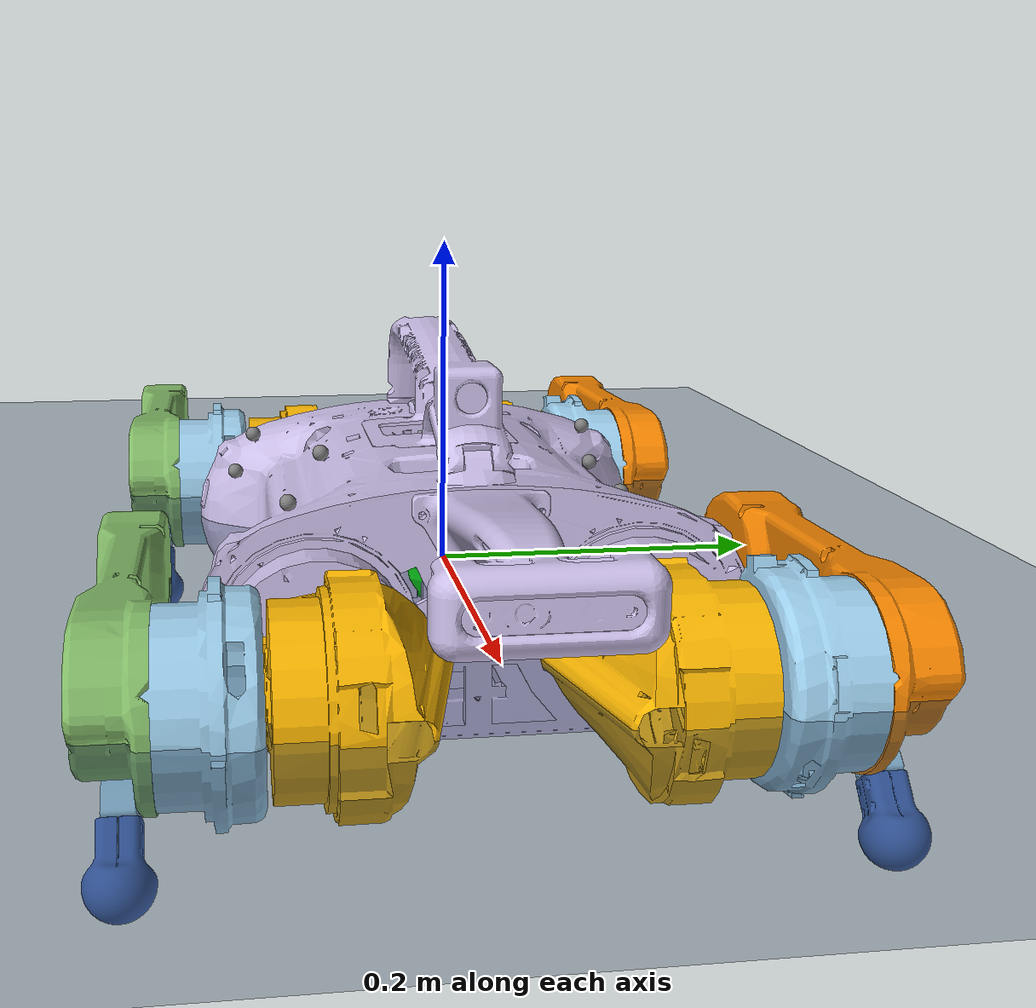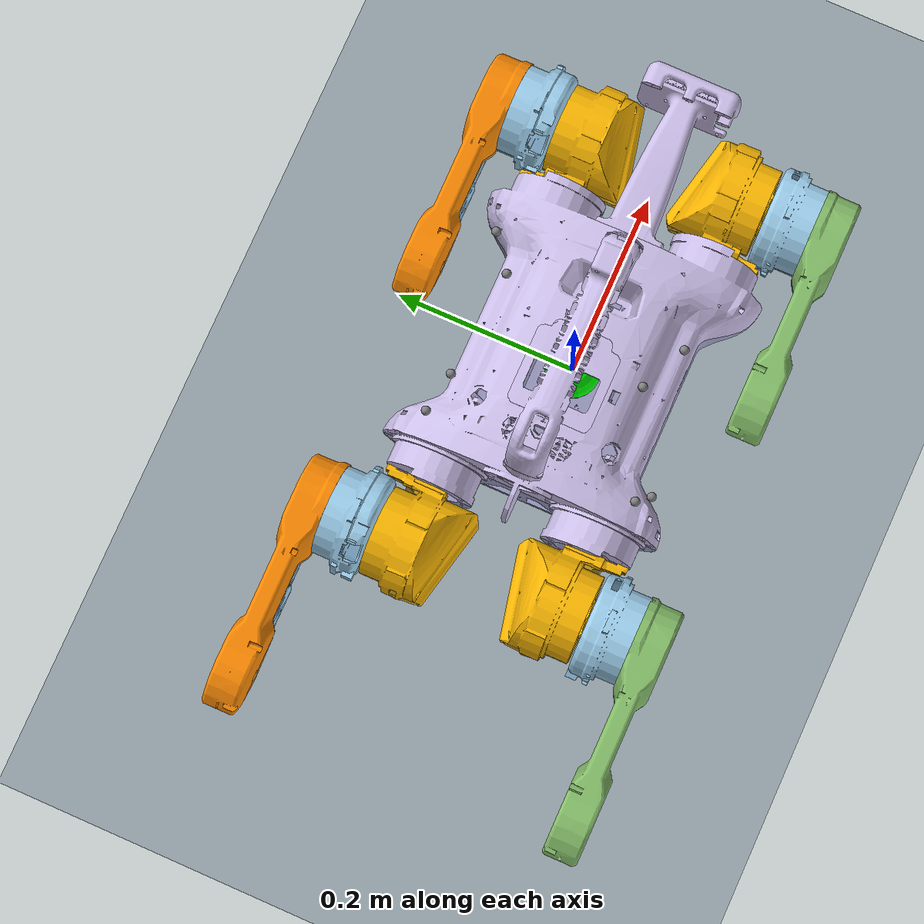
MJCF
<mujoco model="barkour vB scene">
  <include file="barkour_vb_mjx.xml"/>

  <statistic center="0 0 0.1" extent="0.8"/>

  <visual>
    <headlight diffuse="0.6 0.6 0.6" ambient="0.3 0.3 0.3" specular="0 0 0"/>
    <rgba haze="0.15 0.25 0.35 1"/>
    <global azimuth="120" elevation="-20"/>
  </visual>

  <asset>
    <texture type="skybox" builtin="gradient" rgb1="0.3 0.5 0.7" rgb2="0 0 0" width="512" height="3072"/>
    <texture type="2d" name="groundplane" builtin="checker" mark="edge" rgb1="0.2 0.3 0.4" rgb2="0.1 0.2 0.3"
      markrgb="0.8 0.8 0.8" width="300" height="300"/>
    <material name="groundplane" texture="groundplane" texuniform="true" texrepeat="5 5" reflectance="0.2"/>
  </asset>

  <worldbody>
    <light pos="0 0 1.5" dir="0 0 -1" directional="true"/>
    <camera name="default" pos="0.846 -1.465 0.916" xyaxes="0.866 0.500 0.000 -0.171 0.296 0.940"/>
    <geom name="floor" size="0 0 0.05" type="plane" material="groundplane"/>

    <body name="start_marker" pos="0 0 0">
        <site name="goal_site" pos="0 0 0" size="0.03" rgba="0 1 0 1" type="sphere"/>
    </body>

  </worldbody>

  <keyframe>
    <key name="home"
      qpos="0 0 0.28
            1 0 0 0
            0.0 0.5 1.0
            0.0 0.5 1.0
            0.0 0.5 1.0
            0.0 0.5 1.0"
      ctrl="0.0 0.5 1.0
            0.0 0.5 1.0
            0.0 0.5 1.0
            0.0 0.5 1.0"/>
  </keyframe>
</mujoco>

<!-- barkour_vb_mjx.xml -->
<mujoco model="barkour_vb">
  <compiler angle="radian" autolimits="true"/>

  <option iterations="1" ls_iterations="5">
    <flag eulerdamp="disable"/>
  </option>

  <default>
    <default class="bkvb">
      <geom contype="0" conaffinity="0" type="mesh"/>
      <default class="bkvb/collision">
        <geom group="3" contype="0" conaffinity="1"/>
        <default class="bkvb/collision/foot">
          <geom type="sphere" size="0.0175" pos="-0.21425 -0.0779806 0" rgba="1 0 0 1" solimp="0.015 1 0.031" friction="0.8 0.02 0.01"/>
        </default>
      </default>

      <!-- hide sites by default -->
      <site group="5"/>
      <default class="bkvb/vicon">
        <!-- show vicon markers with a small sphere -->
        <site group="0"/>
      </default>

      <joint damping="0.024" armature="0.011"/>
      <general forcerange="-18 18" biastype="affine" gainprm="50 0 0" biasprm="0 -50 -0.5"/>
      <default class="bkvb/abduction">
        <joint range="-1.0472 1.0472"/>
        <general ctrlrange="-0.9472 0.9472"/>
        <geom rgba="0.980392 0.713726 0.00392157 1" mesh="abduction"/>
      </default>
      <default class="bkvb/hip">
        <joint range="-1.54706 3.02902"/>
        <general ctrlrange="-1.44706 2.92902"/>
      </default>
      <default class="bkvb/knee">
        <joint range="0 2.44346"/>
        <general ctrlrange="0.1 2.34346"/>
      </default>
      <default class="bkvb/foot">
        <site pos="-0.21425 -0.0779806 0" quat="0.664463 0.664463 -0.241845 -0.241845"/>
        <geom rgba="0.231373 0.380392 0.705882 1" mesh="foot"/>
      </default>
      <default class="bkvb/lower_leg">
        <geom rgba="0.615686 0.811765 0.929412 1" mesh="lower_leg"/>
      </default>
      <default class="bkvb/upper_leg">
        <geom rgba="0.615686 0.811765 0.929412 1" mesh="upper_leg"/>
      </default>
      <default class="bkvb/upper_leg_left">
        <geom rgba="0.972549 0.529412 0.00392157 1" mesh="upper_leg_left"/>
      </default>
      <default class="bkvb/upper_leg_right">
        <geom rgba="0.513726 0.737255 0.407843 1" mesh="upper_leg_right"/>
      </default>
      <default class="bkvb/torso">
        <geom rgba="0.8 0.74902 0.913725 1"/>
      </default>
    </default>
  </default>

  <asset>
    <mesh name="camera_cover" file="assets/camera_cover.stl"/>
    <mesh name="neck" file="assets/neck.stl"/>
    <mesh name="intel_realsense_depth_camera_d435" file="assets/intel_realsense_depth_camera_d435.stl"/>
    <mesh name="handle" file="assets/handle.stl"/>
    <mesh name="torso" file="assets/torso.stl"/>
    <mesh name="abduction" file="assets/abduction.stl"/>
    <mesh name="upper_leg" file="assets/upper_leg.stl"/>
    <mesh name="upper_leg_left" file="assets/upper_leg_left.stl"/>
    <mesh name="upper_leg_right" file="assets/upper_leg_right.stl"/>
    <mesh name="lower_leg" file="assets/lower_leg.stl"/>
    <mesh name="foot" file="assets/foot.stl"/>
  </asset>

  <worldbody>
    <body name="torso" childclass="bkvb">
      <freejoint name="torso"/>
      <camera name="track" pos="1.958 -2.348 0.591" xyaxes="0.768 0.641 0.000 -0.101 0.122 0.987" mode="trackcom"/>
      <camera name="scene" pos="-7 3 6" xyaxes="0 -1 0  0.707 0 0.707" mode="fixed"/>
      <inertial pos="0.0055238 -0.000354563 0.00835899" quat="-0.00150849 0.694899 -0.000198355 0.719106" mass="6.04352"
        diaginertia="0.144664 0.12027 0.0511405"/>
      <geom class="bkvb/torso" pos="-7.85127e-05 -0.000500734 0" mesh="neck"/>
      <geom class="bkvb/torso" pos="-7.85127e-05 -0.000500734 0" mesh="camera_cover"/>
      <geom class="bkvb/torso" pos="-7.85127e-05 -0.000500734 0" mesh="handle"/>
      <geom class="bkvb/torso" pos="0.319921 -0.000500734 0.0651248" quat="1 0 0 1"
        mesh="intel_realsense_depth_camera_d435"/>
      <geom class="bkvb/torso" pos="-7.85127e-05 -0.000500734 0" mesh="torso"/>
      <site name="imu_frame" pos="0.010715 -0.00025 -0.06" quat="0 0 0 1"/>
      <site name="base_frame"/>
      <site name="vicon_frame"/>
      <!-- dummy bodies for the cameras -->
      <body pos="0.3176 0.017 0.065" quat="1 -1 1 -1">
        <site name="head_camera_frame"/>
        <camera name="realsense/depth" fovy="62" quat="0 1 0 0"/>
        <site name="realsense/depth_frame" quat="0 1 0 0"/>
        <camera name="realsense/rgb" fovy="42.5" pos="0 0.015 0" quat="0 1 0 0"/>
        <site name="realsense/rgb_frame" pos="0 0.015 0" quat="0 1 0 0"/>
        <site name="realsense/imu"/>
      </body>
      <body pos="0.08632 0 0.1213" quat="1 -1 1 -1" name="oak/">
        <site name="handle_camera_frame"/>
        <camera name="oak/rgb" pos="0 0 0.0125" quat="0 -1 -0 -0" resolution="96 60"
          focalpixel="66.55567095 66.53559105" principalpixel="-1.1446674 -1.8664293" sensorsize="0.000288 0.00018"/>
      </body>
      <site name="vicon_0" class="bkvb/vicon" pos="-0.110864 -0.117663 0.061736"/>
      <site name="vicon_1" class="bkvb/vicon" pos="-0.110864 0.116662 0.0617363"
        quat="0.965087 -0.209027 0.154269 -0.0334129"/>
      <site name="vicon_2" class="bkvb/vicon" pos="-0.0625744 0.11068 0.0458139" quat="0.900548 -0.434757 0 0"/>
      <site name="vicon_3" class="bkvb/vicon" pos="0.0561715 0.100042 0.0527394" quat="0.98926 -0.146166 0 0"/>
      <site name="vicon_4" class="bkvb/vicon" pos="0.0960704 0.129697 0.0389732"
        quat="0.767626 -0.517423 -0.313596 0.211381"/>
      <site name="vicon_5" class="bkvb/vicon" pos="-0.0962327 0.13163 -0.0388594"
        quat="0.529619 -0.759572 0.215948 -0.309709"/>
      <site name="vicon_6" class="bkvb/vicon" pos="-7.85127e-05 -0.0778626 0.070357" quat="0.94293 0.33299 0 0"/>
      <site name="vicon_8" class="bkvb/vicon" pos="-0.0962274 -0.130699 0.0389732"
        quat="0.767626 0.517423 0.313596 0.211381"/>
      <site name="vicon_9" class="bkvb/vicon" pos="0.0561715 -0.101043 0.0527394" quat="0.98926 0.146166 0 0"/>
      <body name="leg_front_left" pos="0.171671 0.0892493 -9.8e-06" quat="1 -1 -1 1">
        <inertial pos="0.00547726 -0.000288034 -0.0602191" quat="0.999837 0.0103892 -0.0143715 -0.00325656" mass="0.787"
          diaginertia="0.00143831 0.00117023 0.00100011"/>
        <joint name="abduction_front_left" class="bkvb/abduction"/>
        <geom class="bkvb/abduction" pos="0 0.000111373 0.0029" quat="1 1 0 0"/>
        <body name="upper_leg_front_left" pos="0.03085 0 -0.065" quat="0 -1 0 1">
          <inertial pos="-0.0241397 0.00402429 -0.0453038" quat="0.0673193 0.647966 -0.00518142 0.75867" mass="1.155"
            diaginertia="0.00562022 0.00519471 0.0012633"/>
          <joint name="hip_front_left" class="bkvb/hip"/>
          <geom class="bkvb/upper_leg" pos="0.0679 0.000111373 0.03085" quat="1 1 1 -1"/>
          <geom class="bkvb/upper_leg_left" pos="0 0 -0.05075" quat="0 0 1 0"/>
          <body name="lower_leg_front_left" pos="-0.19 0 -0.069575" quat="0 0 1 0">
            <inertial pos="-0.0895493 -0.0301957 -3.02082e-08" quat="-0.101465 0.699789 0.101465 0.699789"
              mass="0.171238" diaginertia="0.00137406 0.00135746 3.05521e-05"/>
            <joint name="knee_front_left" class="bkvb/knee"/>
            <geom class="bkvb/foot" pos="-0.0649838 0.178542 0" quat="0.819152 0 0 -0.573576"/>
            <geom class="bkvb/lower_leg" pos="-0.0649838 0.178542 0" quat="0.819152 0 0 -0.573576"/>
            <geom name="foot_front_left" class="bkvb/collision/foot"/>
            <site name="foot_front_left" class="bkvb/foot"/>
          </body>
        </body>
      </body>
      <body name="leg_hind_left" pos="-0.171829 0.0892493 -9.8e-06" quat="1 -1 -1 1">
        <inertial pos="0.00547726 0.000288034 0.0602191" quat="0.999837 0.0103892 0.0143715 0.00325656" mass="0.787"
          diaginertia="0.00143831 0.00117023 0.00100011"/>
        <joint name="abduction_hind_left" class="bkvb/abduction"/>
        <geom class="bkvb/abduction" pos="0 -0.000111373 -0.0029" quat="1 -1 0 0"/>
        <body name="upper_leg_hind_left" pos="0.03085 0 0.065" quat="0 1 0 -1">
          <inertial pos="-0.0241397 0.00402429 -0.0453038" quat="0.0673193 0.647966 -0.00518142 0.75867" mass="1.155"
            diaginertia="0.00562022 0.00519471 0.0012633"/>
          <joint name="hip_hind_left" class="bkvb/hip"/>
          <geom class="bkvb/upper_leg" pos="0.0679 0.000111373 0.03085" quat="1 1 1 -1"/>
          <geom class="bkvb/upper_leg_left" pos="0 0 -0.05075" quat="0 0 1 0"/>
          <body name="lower_leg_hind_left" pos="-0.19 0 -0.069925" quat="0 0 1 0">
            <inertial pos="-0.0895493 -0.0301957 -3.02082e-08" quat="-0.101465 0.699789 0.101465 0.699789"
              mass="0.171238" diaginertia="0.00137406 0.00135746 3.05521e-05"/>
            <joint name="knee_hind_left" class="bkvb/knee"/>
            <geom class="bkvb/lower_leg" pos="-0.0649838 0.178542 0" quat="0.819152 0 0 -0.573576"/>
            <geom class="bkvb/foot" pos="-0.0649838 0.178542 0" quat="0.819152 0 0 -0.573576"/>
            <geom name="foot_hind_left" class="bkvb/collision/foot"/>
            <site name="foot_hind_left" class="bkvb/foot"/>
          </body>
        </body>
      </body>
      <body name="leg_front_right" pos="0.171671 -0.0907507 -9.8e-06" quat="1 -1 1 -1">
        <inertial pos="0.00547726 0.000288034 0.0602191" quat="0.999837 0.0103892 0.0143715 0.00325656" mass="0.787"
          diaginertia="0.00143831 0.00117023 0.00100011"/>
        <joint name="abduction_front_right" class="bkvb/abduction"/>
        <geom class="bkvb/abduction" pos="0 -0.000111373 -0.0029" quat="1 -1 0 0"/>
        <body name="upper_leg_front_right" pos="0.03085 0 0.065" quat="0 -1 0 -1">
          <inertial pos="-0.0241393 0.00324567 0.0453036" quat="-0.00604983 0.756969 -0.0854547 0.64781" mass="1.155"
            diaginertia="0.00563107 0.00519539 0.00126472"/>
          <joint name="hip_front_right" class="bkvb/hip"/>
          <geom class="bkvb/upper_leg" pos="0.0679 -0.000111373 -0.03085" quat="1 -1 -1 -1"/>
          <geom class="bkvb/upper_leg_right" pos="0 0 0.05075" quat="0 0 -1 0"/>
          <body name="lower_leg_front_right" pos="-0.19 0 0.069575" quat="0 0 -1 0">
            <inertial pos="-0.0895493 -0.0301957 -3.02082e-08" quat="-0.101465 0.699789 0.101465 0.699789"
              mass="0.171238" diaginertia="0.00137406 0.00135746 3.05521e-05"/>
            <joint name="knee_front_right" class="bkvb/knee"/>
            <geom class="bkvb/foot" pos="-0.0649838 0.178542 0" quat="0.819152 0 0 -0.573576"/>
            <geom class="bkvb/lower_leg" pos="-0.0649838 0.178542 0" quat="0.819152 0 0 -0.573576"/>
            <geom name="foot_front_right" class="bkvb/collision/foot"/>
            <site name="foot_front_right" class="bkvb/foot"/>
          </body>
        </body>
      </body>
      <body name="leg_hind_right" pos="-0.171829 -0.0907507 -9.8e-06" quat="1 -1 1 -1">
        <inertial pos="0.00547726 -0.000288034 -0.0600191" quat="0.999837 0.0103892 -0.0143715 -0.00325656" mass="0.787"
          diaginertia="0.00143831 0.00117023 0.00100011"/>
        <joint name="abduction_hind_right" class="bkvb/abduction"/>
        <geom class="bkvb/abduction" pos="0 0.000111373 0.0031" quat="1 1 0 0"/>
        <body name="upper_leg_hind_right" pos="0.03085 0 -0.0648" quat="0 1 0 1">
          <inertial pos="-0.0241393 0.00324567 0.0453036" quat="-0.00604983 0.756969 -0.0854547 0.64781" mass="1.155"
            diaginertia="0.00563107 0.00519539 0.00126472"/>
          <joint name="hip_hind_right" class="bkvb/hip"/>
          <geom class="bkvb/upper_leg" pos="0.0679 -0.000111373 -0.03085" quat="1 -1 -1 -1"/>
          <geom class="bkvb/upper_leg_right" pos="0 0 0.05075" quat="0 0 -1 0"/>
          <body name="lower_leg_hind_right" pos="-0.19 0 0.069575" quat="0 0 -1 0">
            <inertial pos="-0.0895493 -0.0301957 -3.02082e-08" quat="-0.101465 0.699789 0.101465 0.699789"
              mass="0.171238" diaginertia="0.00137406 0.00135746 3.05521e-05"/>
            <joint name="knee_hind_right" class="bkvb/knee"/>
            <geom class="bkvb/lower_leg" pos="-0.0649838 0.178542 0" quat="0.819152 0 0 -0.573576"/>
            <geom class="bkvb/foot" pos="-0.0649838 0.178542 0" quat="0.819152 0 0 -0.573576"/>
            <geom name="foot_hind_right" class="bkvb/collision/foot"/>
            <site name="foot_hind_right" class="bkvb/foot"/>
          </body>
        </body>
      </body>
    </body>
  </worldbody>

  <actuator>
    <general name="abduction_front_left" class="bkvb/abduction" joint="abduction_front_left"/>
    <general name="hip_front_left" class="bkvb/hip" joint="hip_front_left"/>
    <general name="knee_front_left" class="bkvb/knee" joint="knee_front_left"/>
    <general name="abduction_hind_left" class="bkvb/abduction" joint="abduction_hind_left"/>
    <general name="hip_hind_left" class="bkvb/hip" joint="hip_hind_left"/>
    <general name="knee_hind_left" class="bkvb/knee" joint="knee_hind_left"/>
    <general name="abduction_front_right" class="bkvb/abduction" joint="abduction_front_right"/>
    <general name="hip_front_right" class="bkvb/hip" joint="hip_front_right"/>
    <general name="knee_front_right" class="bkvb/knee" joint="knee_front_right"/>
    <general name="abduction_hind_right" class="bkvb/abduction" joint="abduction_hind_right"/>
    <general name="hip_hind_right" class="bkvb/hip" joint="hip_hind_right"/>
    <general name="knee_hind_right" class="bkvb/knee" joint="knee_hind_right"/>
  </actuator>

  <sensor>
    <jointpos joint="abduction_front_left" name="abduction_front_left_pos"/>
    <jointpos joint="hip_front_left" name="hip_front_left_pos"/>
    <jointpos joint="knee_front_left" name="knee_front_left_pos"/>
    <jointpos joint="abduction_hind_left" name="abduction_hind_left_pos"/>
    <jointpos joint="hip_hind_left" name="hip_hind_left_pos"/>
    <jointpos joint="knee_hind_left" name="knee_hind_left_pos"/>
    <jointpos joint="abduction_front_right" name="abduction_front_right_pos"/>
    <jointpos joint="hip_front_right" name="hip_front_right_pos"/>
    <jointpos joint="knee_front_right" name="knee_front_right_pos"/>
    <jointpos joint="abduction_hind_right" name="abduction_hind_right_pos"/>
    <jointpos joint="hip_hind_right" name="hip_hind_right_pos"/>
    <jointpos joint="knee_hind_right" name="knee_hind_right_pos"/>
    <jointvel joint="abduction_front_left" name="abduction_front_left_vel"/>
    <jointvel joint="hip_front_left" name="hip_front_left_vel"/>
    <jointvel joint="knee_front_left" name="knee_front_left_vel"/>
    <jointvel joint="abduction_hind_left" name="abduction_hind_left_vel"/>
    <jointvel joint="hip_hind_left" name="hip_hind_left_vel"/>
    <jointvel joint="knee_hind_left" name="knee_hind_left_vel"/>
    <jointvel joint="abduction_front_right" name="abduction_front_right_vel"/>
    <jointvel joint="hip_front_right" name="hip_front_right_vel"/>
    <jointvel joint="knee_front_right" name="knee_front_right_vel"/>
    <jointvel joint="abduction_hind_right" name="abduction_hind_right_vel"/>
    <jointvel joint="hip_hind_right" name="hip_hind_right_vel"/>
    <jointvel joint="knee_hind_right" name="knee_hind_right_vel"/>
    <gyro site="imu_frame" name="gyro"/>
    <velocimeter site="imu_frame" name="local_linvel"/>
    <accelerometer site="imu_frame" name="accelerometer"/>
    <framepos objtype="site" objname="imu_frame" name="global_position"/>
    <framezaxis objtype="site" objname="imu_frame" name="upvector"/>
    <framelinvel objtype="site" objname="imu_frame" name="global_linvel"/>
    <frameangvel objtype="site" objname="imu_frame" name="global_angvel"/>
    <framequat objtype="site" objname="imu_frame" name="orientation"/>
  </sensor>
</mujoco>
